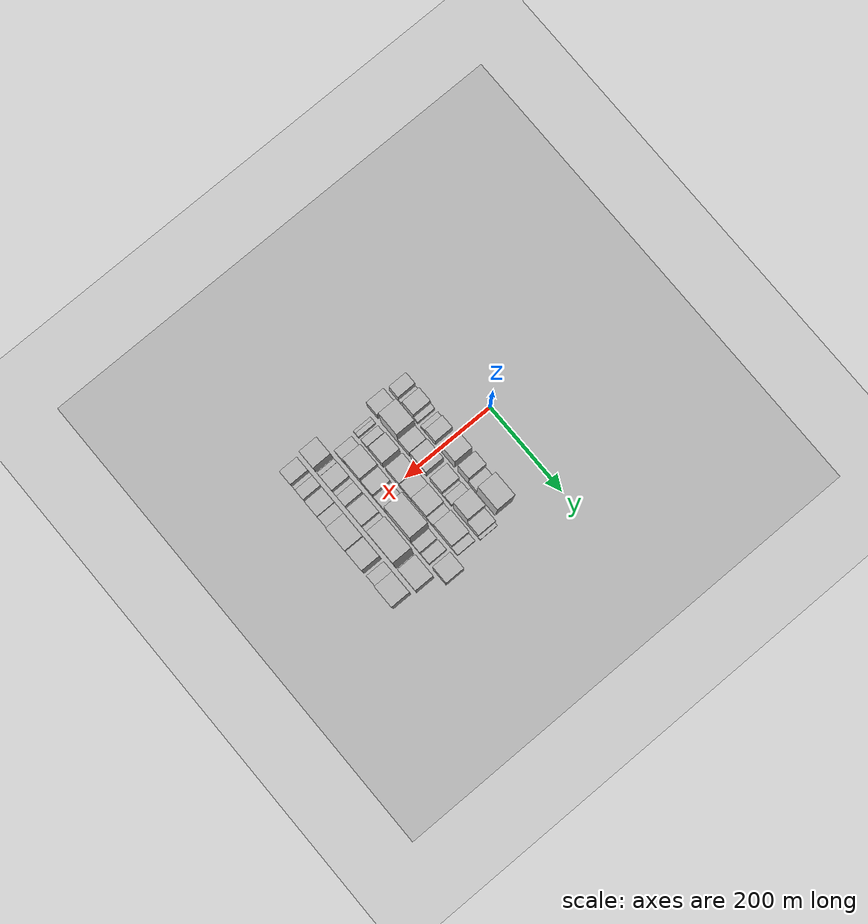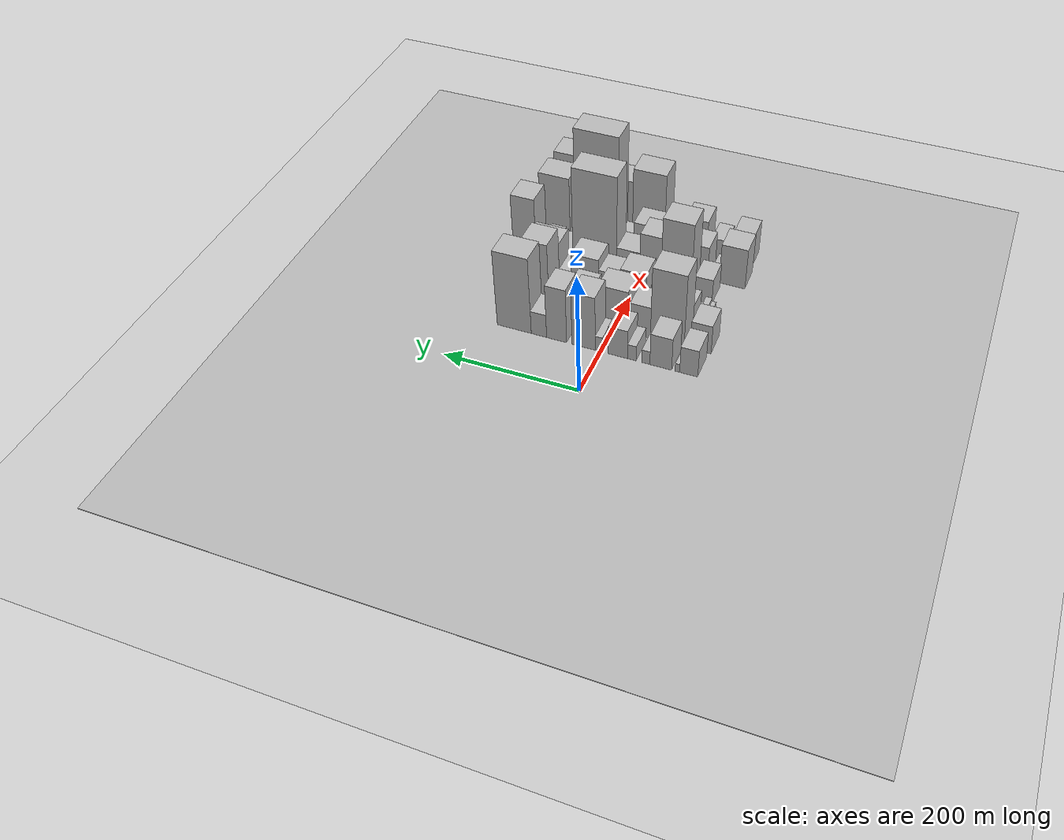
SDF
<sdf version="1.6">
 <world name="default">
  <include><name>ground_plane_1</name><uri>model://HANNAS_ground_plane</uri></include>
  <include>
   <name>ground_plane_2</name>
   <uri>model://HANNAS_ground_plane</uri>
   <pose>100 0 0  0 0 0</pose>
  </include>
  <model name="building_19">
   <static>1</static>
   <pose>100.0000 -127.1408 0 0.000000 0.000000 0.000000</pose>
   <link name="link">
    <pose>0 0 24.00 0 0 0</pose>
    <collision name="collision"><geometry><box><size>40.0000 25.6695 48.0000</size></box></geometry></collision>
    <visual name="visual">
     <cast_shadows>0</cast_shadows>
     <geometry><box><size>40.0000 25.6695 48.0000</size></box></geometry>
     <material>
      <script>
       <uri>model://HANNAS_wall/materials/scripts</uri>
       <uri>model://HANNAS_wall/materials/textures</uri>
       <name>vrc/HANNAS_wall</name>
      </script>
     </material>
    </visual>
   </link>
  </model>
  <model name="building_20">
   <static>1</static>
   <pose>100.0000 -111.0796 0 0.000000 0.000000 0.000000</pose>
   <link name="link">
    <pose>0 0 7.50 0 0 0</pose>
    <collision name="collision"><geometry><box><size>40.0000 6.4531 15.0000</size></box></geometry></collision>
    <visual name="visual">
     <cast_shadows>0</cast_shadows>
     <geometry><box><size>40.0000 6.4531 15.0000</size></box></geometry>
     <material>
      <script>
       <uri>model://HANNAS_wall/materials/scripts</uri>
       <uri>model://HANNAS_wall/materials/textures</uri>
       <name>vrc/HANNAS_wall</name>
      </script>
     </material>
    </visual>
   </link>
  </model>
  <model name="building_21">
   <static>1</static>
   <pose>100.0000 -87.2297 0 0.000000 0.000000 0.000000</pose>
   <link name="link">
    <pose>0 0 28.50 0 0 0</pose>
    <collision name="collision"><geometry><box><size>40.0000 31.2466 57.0000</size></box></geometry></collision>
    <visual name="visual">
     <cast_shadows>0</cast_shadows>
     <geometry><box><size>40.0000 31.2466 57.0000</size></box></geometry>
     <material>
      <script>
       <uri>model://HANNAS_wall/materials/scripts</uri>
       <uri>model://HANNAS_wall/materials/textures</uri>
       <name>vrc/HANNAS_wall</name>
      </script>
     </material>
    </visual>
   </link>
  </model>
  <model name="building_22">
   <static>1</static>
   <pose>100.0000 -65.7462 0 0.000000 0.000000 0.000000</pose>
   <link name="link">
    <pose>0 0 12.00 0 0 0</pose>
    <collision name="collision"><geometry><box><size>40.0000 11.7204 24.0000</size></box></geometry></collision>
    <visual name="visual">
     <cast_shadows>0</cast_shadows>
     <geometry><box><size>40.0000 11.7204 24.0000</size></box></geometry>
     <material>
      <script>
       <uri>model://HANNAS_wall/materials/scripts</uri>
       <uri>model://HANNAS_wall/materials/textures</uri>
       <name>vrc/HANNAS_wall</name>
      </script>
     </material>
    </visual>
   </link>
  </model>
  <model name="building_23">
   <static>1</static>
   <pose>100.0000 -45.4646 0 0.000000 0.000000 0.000000</pose>
   <link name="link">
    <pose>0 0 13.50 0 0 0</pose>
    <collision name="collision"><geometry><box><size>40.0000 12.8429 27.0000</size></box></geometry></collision>
    <visual name="visual">
     <cast_shadows>0</cast_shadows>
     <geometry><box><size>40.0000 12.8429 27.0000</size></box></geometry>
     <material>
      <script>
       <uri>model://HANNAS_wall/materials/scripts</uri>
       <uri>model://HANNAS_wall/materials/textures</uri>
       <name>vrc/HANNAS_wall</name>
      </script>
     </material>
    </visual>
   </link>
  </model>
  <model name="building_24">
   <static>1</static>
   <pose>100.0000 -24.9906 0 0.000000 0.000000 0.000000</pose>
   <link name="link">
    <pose>0 0 25.50 0 0 0</pose>
    <collision name="collision"><geometry><box><size>40.0000 28.1051 51.0000</size></box></geometry></collision>
    <visual name="visual">
     <cast_shadows>0</cast_shadows>
     <geometry><box><size>40.0000 28.1051 51.0000</size></box></geometry>
     <material>
      <script>
       <uri>model://HANNAS_wall/materials/scripts</uri>
       <uri>model://HANNAS_wall/materials/textures</uri>
       <name>vrc/HANNAS_wall</name>
      </script>
     </material>
    </visual>
   </link>
  </model>
  <model name="building_25">
   <static>1</static>
   <pose>100.0000 2.5151 0 0.000000 0.000000 0.000000</pose>
   <link name="link">
    <pose>0 0 13.50 0 0 0</pose>
    <collision name="collision"><geometry><box><size>40.0000 10.9063 27.0000</size></box></geometry></collision>
    <visual name="visual">
     <cast_shadows>0</cast_shadows>
     <geometry><box><size>40.0000 10.9063 27.0000</size></box></geometry>
     <material>
      <script>
       <uri>model://HANNAS_wall/materials/scripts</uri>
       <uri>model://HANNAS_wall/materials/textures</uri>
       <name>vrc/HANNAS_wall</name>
      </script>
     </material>
    </visual>
   </link>
  </model>
  <model name="building_26">
   <static>1</static>
   <pose>100.0000 25.2675 0 0.000000 0.000000 0.000000</pose>
   <link name="link">
    <pose>0 0 48.00 0 0 0</pose>
    <collision name="collision"><geometry><box><size>40.0000 34.5985 96.0000</size></box></geometry></collision>
    <visual name="visual">
     <cast_shadows>0</cast_shadows>
     <geometry><box><size>40.0000 34.5985 96.0000</size></box></geometry>
     <material>
      <script>
       <uri>model://HANNAS_wall/materials/scripts</uri>
       <uri>model://HANNAS_wall/materials/textures</uri>
       <name>vrc/HANNAS_wall</name>
      </script>
     </material>
    </visual>
   </link>
  </model>
  <model name="building_27">
   <static>1</static>
   <pose>100.0000 65.6006 0 0.000000 0.000000 0.000000</pose>
   <link name="link">
    <pose>0 0 48.00 0 0 0</pose>
    <collision name="collision"><geometry><box><size>40.0000 30.0678 96.0000</size></box></geometry></collision>
    <visual name="visual">
     <cast_shadows>0</cast_shadows>
     <geometry><box><size>40.0000 30.0678 96.0000</size></box></geometry>
     <material>
      <script>
       <uri>model://HANNAS_wall/materials/scripts</uri>
       <uri>model://HANNAS_wall/materials/textures</uri>
       <name>vrc/HANNAS_wall</name>
      </script>
     </material>
    </visual>
   </link>
  </model>
  <model name="building_28">
   <static>1</static>
   <pose>100.0000 92.2088 0 0.000000 0.000000 0.000000</pose>
   <link name="link">
    <pose>0 0 21.00 0 0 0</pose>
    <collision name="collision"><geometry><box><size>40.0000 23.1486 42.0000</size></box></geometry></collision>
    <visual name="visual">
     <cast_shadows>0</cast_shadows>
     <geometry><box><size>40.0000 23.1486 42.0000</size></box></geometry>
     <material>
      <script>
       <uri>model://HANNAS_wall/materials/scripts</uri>
       <uri>model://HANNAS_wall/materials/textures</uri>
       <name>vrc/HANNAS_wall</name>
      </script>
     </material>
    </visual>
   </link>
  </model>
  <model name="building_29">
   <static>1</static>
   <pose>100.0000 129.7440 0 0.000000 0.000000 0.000000</pose>
   <link name="link">
    <pose>0 0 67.50 0 0 0</pose>
    <collision name="collision"><geometry><box><size>40.0000 51.9217 135.0000</size></box></geometry></collision>
    <visual name="visual">
     <cast_shadows>0</cast_shadows>
     <geometry><box><size>40.0000 51.9217 135.0000</size></box></geometry>
     <material>
      <script>
       <uri>model://HANNAS_wall/materials/scripts</uri>
       <uri>model://HANNAS_wall/materials/textures</uri>
       <name>vrc/HANNAS_wall</name>
      </script>
     </material>
    </visual>
   </link>
  </model>
  <model name="building_77">
   <static>1</static>
   <pose>149.0000 -128.6249 0 0.000000 0.000000 0.000000</pose>
   <link name="link">
    <pose>0 0 25.50 0 0 0</pose>
    <collision name="collision"><geometry><box><size>40.0000 29.9173 51.0000</size></box></geometry></collision>
    <visual name="visual">
     <cast_shadows>0</cast_shadows>
     <geometry><box><size>40.0000 29.9173 51.0000</size></box></geometry>
     <material>
      <script>
       <uri>model://HANNAS_wall/materials/scripts</uri>
       <uri>model://HANNAS_wall/materials/textures</uri>
       <name>vrc/HANNAS_wall</name>
      </script>
     </material>
    </visual>
   </link>
  </model>
  <model name="building_78">
   <static>1</static>
   <pose>149.0000 -80.0184 0 0.000000 0.000000 0.000000</pose>
   <link name="link">
    <pose>0 0 64.50 0 0 0</pose>
    <collision name="collision"><geometry><box><size>40.0000 49.2957 129.0000</size></box></geometry></collision>
    <visual name="visual">
     <cast_shadows>0</cast_shadows>
     <geometry><box><size>40.0000 49.2957 129.0000</size></box></geometry>
     <material>
      <script>
       <uri>model://HANNAS_wall/materials/scripts</uri>
       <uri>model://HANNAS_wall/materials/textures</uri>
       <name>vrc/HANNAS_wall</name>
      </script>
     </material>
    </visual>
   </link>
  </model>
  <model name="building_79">
   <static>1</static>
   <pose>149.0000 -40.0580 0 0.000000 0.000000 0.000000</pose>
   <link name="link">
    <pose>0 0 28.50 0 0 0</pose>
    <collision name="collision"><geometry><box><size>40.0000 30.6251 57.0000</size></box></geometry></collision>
    <visual name="visual">
     <cast_shadows>0</cast_shadows>
     <geometry><box><size>40.0000 30.6251 57.0000</size></box></geometry>
     <material>
      <script>
       <uri>model://HANNAS_wall/materials/scripts</uri>
       <uri>model://HANNAS_wall/materials/textures</uri>
       <name>vrc/HANNAS_wall</name>
      </script>
     </material>
    </visual>
   </link>
  </model>
  <model name="building_80">
   <static>1</static>
   <pose>149.0000 0.3487 0 0.000000 0.000000 0.000000</pose>
   <link name="link">
    <pose>0 0 37.50 0 0 0</pose>
    <collision name="collision"><geometry><box><size>40.0000 44.1882 75.0000</size></box></geometry></collision>
    <visual name="visual">
     <cast_shadows>0</cast_shadows>
     <geometry><box><size>40.0000 44.1882 75.0000</size></box></geometry>
     <material>
      <script>
       <uri>model://HANNAS_wall/materials/scripts</uri>
       <uri>model://HANNAS_wall/materials/textures</uri>
       <name>vrc/HANNAS_wall</name>
      </script>
     </material>
    </visual>
   </link>
  </model>
  <model name="building_81">
   <static>1</static>
   <pose>149.0000 49.5067 0 0.000000 0.000000 0.000000</pose>
   <link name="link">
    <pose>0 0 30.00 0 0 0</pose>
    <collision name="collision"><geometry><box><size>40.0000 34.1278 60.0000</size></box></geometry></collision>
    <visual name="visual">
     <cast_shadows>0</cast_shadows>
     <geometry><box><size>40.0000 34.1278 60.0000</size></box></geometry>
     <material>
      <script>
       <uri>model://HANNAS_wall/materials/scripts</uri>
       <uri>model://HANNAS_wall/materials/textures</uri>
       <name>vrc/HANNAS_wall</name>
      </script>
     </material>
    </visual>
   </link>
  </model>
  <model name="building_82">
   <static>1</static>
   <pose>149.0000 69.8891 0 0.000000 0.000000 0.000000</pose>
   <link name="link">
    <pose>0 0 7.50 0 0 0</pose>
    <collision name="collision"><geometry><box><size>40.0000 6.6370 15.0000</size></box></geometry></collision>
    <visual name="visual">
     <cast_shadows>0</cast_shadows>
     <geometry><box><size>40.0000 6.6370 15.0000</size></box></geometry>
     <material>
      <script>
       <uri>model://HANNAS_wall/materials/scripts</uri>
       <uri>model://HANNAS_wall/materials/textures</uri>
       <name>vrc/HANNAS_wall</name>
      </script>
     </material>
    </visual>
   </link>
  </model>
  <model name="building_83">
   <static>1</static>
   <pose>149.0000 82.9755 0 0.000000 0.000000 0.000000</pose>
   <link name="link">
    <pose>0 0 16.50 0 0 0</pose>
    <collision name="collision"><geometry><box><size>40.0000 19.5358 33.0000</size></box></geometry></collision>
    <visual name="visual">
     <cast_shadows>0</cast_shadows>
     <geometry><box><size>40.0000 19.5358 33.0000</size></box></geometry>
     <material>
      <script>
       <uri>model://HANNAS_wall/materials/scripts</uri>
       <uri>model://HANNAS_wall/materials/textures</uri>
       <name>vrc/HANNAS_wall</name>
      </script>
     </material>
    </visual>
   </link>
  </model>
  <model name="building_84">
   <static>1</static>
   <pose>149.0000 116.1158 0 0.000000 0.000000 0.000000</pose>
   <link name="link">
    <pose>0 0 61.50 0 0 0</pose>
    <collision name="collision"><geometry><box><size>40.0000 38.7449 123.0000</size></box></geometry></collision>
    <visual name="visual">
     <cast_shadows>0</cast_shadows>
     <geometry><box><size>40.0000 38.7449 123.0000</size></box></geometry>
     <material>
      <script>
       <uri>model://HANNAS_wall/materials/scripts</uri>
       <uri>model://HANNAS_wall/materials/textures</uri>
       <name>vrc/HANNAS_wall</name>
      </script>
     </material>
    </visual>
   </link>
  </model>
  <model name="building_85">
   <static>1</static>
   <pose>149.0000 150.5830 0 0.000000 0.000000 0.000000</pose>
   <link name="link">
    <pose>0 0 30.00 0 0 0</pose>
    <collision name="collision"><geometry><box><size>40.0000 30.1894 60.0000</size></box></geometry></collision>
    <visual name="visual">
     <cast_shadows>0</cast_shadows>
     <geometry><box><size>40.0000 30.1894 60.0000</size></box></geometry>
     <material>
      <script>
       <uri>model://HANNAS_wall/materials/scripts</uri>
       <uri>model://HANNAS_wall/materials/textures</uri>
       <name>vrc/HANNAS_wall</name>
      </script>
     </material>
    </visual>
   </link>
  </model>
  <model name="building_86">
   <static>1</static>
   <pose>149.0000 169.0528 0 0.000000 0.000000 0.000000</pose>
   <link name="link">
    <pose>0 0 7.50 0 0 0</pose>
    <collision name="collision"><geometry><box><size>40.0000 6.7502 15.0000</size></box></geometry></collision>
    <visual name="visual">
     <cast_shadows>0</cast_shadows>
     <geometry><box><size>40.0000 6.7502 15.0000</size></box></geometry>
     <material>
      <script>
       <uri>model://HANNAS_wall/materials/scripts</uri>
       <uri>model://HANNAS_wall/materials/textures</uri>
       <name>vrc/HANNAS_wall</name>
      </script>
     </material>
    </visual>
   </link>
  </model>
  <model name="building_128">
   <static>1</static>
   <pose>198.0000 -120.3595 0 0.000000 0.000000 0.000000</pose>
   <link name="link">
    <pose>0 0 7.50 0 0 0</pose>
    <collision name="collision"><geometry><box><size>40.0000 6.4056 15.0000</size></box></geometry></collision>
    <visual name="visual">
     <cast_shadows>0</cast_shadows>
     <geometry><box><size>40.0000 6.4056 15.0000</size></box></geometry>
     <material>
      <script>
       <uri>model://HANNAS_wall/materials/scripts</uri>
       <uri>model://HANNAS_wall/materials/textures</uri>
       <name>vrc/HANNAS_wall</name>
      </script>
     </material>
    </visual>
   </link>
  </model>
  <model name="building_129">
   <static>1</static>
   <pose>198.0000 -112.6221 0 0.000000 0.000000 0.000000</pose>
   <link name="link">
    <pose>0 0 10.50 0 0 0</pose>
    <collision name="collision"><geometry><box><size>40.0000 9.0693 21.0000</size></box></geometry></collision>
    <visual name="visual">
     <cast_shadows>0</cast_shadows>
     <geometry><box><size>40.0000 9.0693 21.0000</size></box></geometry>
     <material>
      <script>
       <uri>model://HANNAS_wall/materials/scripts</uri>
       <uri>model://HANNAS_wall/materials/textures</uri>
       <name>vrc/HANNAS_wall</name>
      </script>
     </material>
    </visual>
   </link>
  </model>
  <model name="building_130">
   <static>1</static>
   <pose>198.0000 -92.4894 0 0.000000 0.000000 0.000000</pose>
   <link name="link">
    <pose>0 0 15.00 0 0 0</pose>
    <collision name="collision"><geometry><box><size>40.0000 17.1961 30.0000</size></box></geometry></collision>
    <visual name="visual">
     <cast_shadows>0</cast_shadows>
     <geometry><box><size>40.0000 17.1961 30.0000</size></box></geometry>
     <material>
      <script>
       <uri>model://HANNAS_wall/materials/scripts</uri>
       <uri>model://HANNAS_wall/materials/textures</uri>
       <name>vrc/HANNAS_wall</name>
      </script>
     </material>
    </visual>
   </link>
  </model>
  <model name="building_131">
   <static>1</static>
   <pose>198.0000 -80.7135 0 0.000000 0.000000 0.000000</pose>
   <link name="link">
    <pose>0 0 7.50 0 0 0</pose>
    <collision name="collision"><geometry><box><size>40.0000 6.3558 15.0000</size></box></geometry></collision>
    <visual name="visual">
     <cast_shadows>0</cast_shadows>
     <geometry><box><size>40.0000 6.3558 15.0000</size></box></geometry>
     <material>
      <script>
       <uri>model://HANNAS_wall/materials/scripts</uri>
       <uri>model://HANNAS_wall/materials/textures</uri>
       <name>vrc/HANNAS_wall</name>
      </script>
     </material>
    </visual>
   </link>
  </model>
  <model name="building_132">
   <static>1</static>
   <pose>198.0000 -58.3212 0 0.000000 0.000000 0.000000</pose>
   <link name="link">
    <pose>0 0 37.50 0 0 0</pose>
    <collision name="collision"><geometry><box><size>40.0000 38.4289 75.0000</size></box></geometry></collision>
    <visual name="visual">
     <cast_shadows>0</cast_shadows>
     <geometry><box><size>40.0000 38.4289 75.0000</size></box></geometry>
     <material>
      <script>
       <uri>model://HANNAS_wall/materials/scripts</uri>
       <uri>model://HANNAS_wall/materials/textures</uri>
       <name>vrc/HANNAS_wall</name>
      </script>
     </material>
    </visual>
   </link>
  </model>
  <model name="building_133">
   <static>1</static>
   <pose>198.0000 -11.8945 0 0.000000 0.000000 0.000000</pose>
   <link name="link">
    <pose>0 0 34.50 0 0 0</pose>
    <collision name="collision"><geometry><box><size>40.0000 38.4244 69.0000</size></box></geometry></collision>
    <visual name="visual">
     <cast_shadows>0</cast_shadows>
     <geometry><box><size>40.0000 38.4244 69.0000</size></box></geometry>
     <material>
      <script>
       <uri>model://HANNAS_wall/materials/scripts</uri>
       <uri>model://HANNAS_wall/materials/textures</uri>
       <name>vrc/HANNAS_wall</name>
      </script>
     </material>
    </visual>
   </link>
  </model>
  <model name="building_134">
   <static>1</static>
   <pose>198.0000 23.7415 0 0.000000 0.000000 0.000000</pose>
   <link name="link">
    <pose>0 0 28.50 0 0 0</pose>
    <collision name="collision"><geometry><box><size>40.0000 32.8474 57.0000</size></box></geometry></collision>
    <visual name="visual">
     <cast_shadows>0</cast_shadows>
     <geometry><box><size>40.0000 32.8474 57.0000</size></box></geometry>
     <material>
      <script>
       <uri>model://HANNAS_wall/materials/scripts</uri>
       <uri>model://HANNAS_wall/materials/textures</uri>
       <name>vrc/HANNAS_wall</name>
      </script>
     </material>
    </visual>
   </link>
  </model>
  <model name="building_135">
   <static>1</static>
   <pose>198.0000 61.0651 0 0.000000 0.000000 0.000000</pose>
   <link name="link">
    <pose>0 0 37.50 0 0 0</pose>
    <collision name="collision"><geometry><box><size>40.0000 41.7999 75.0000</size></box></geometry></collision>
    <visual name="visual">
     <cast_shadows>0</cast_shadows>
     <geometry><box><size>40.0000 41.7999 75.0000</size></box></geometry>
     <material>
      <script>
       <uri>model://HANNAS_wall/materials/scripts</uri>
       <uri>model://HANNAS_wall/materials/textures</uri>
       <name>vrc/HANNAS_wall</name>
      </script>
     </material>
    </visual>
   </link>
  </model>
  <model name="building_136">
   <static>1</static>
   <pose>198.0000 91.7502 0 0.000000 0.000000 0.000000</pose>
   <link name="link">
    <pose>0 0 19.50 0 0 0</pose>
    <collision name="collision"><geometry><box><size>40.0000 19.5705 39.0000</size></box></geometry></collision>
    <visual name="visual">
     <cast_shadows>0</cast_shadows>
     <geometry><box><size>40.0000 19.5705 39.0000</size></box></geometry>
     <material>
      <script>
       <uri>model://HANNAS_wall/materials/scripts</uri>
       <uri>model://HANNAS_wall/materials/textures</uri>
       <name>vrc/HANNAS_wall</name>
      </script>
     </material>
    </visual>
   </link>
  </model>
  <model name="building_137">
   <static>1</static>
   <pose>198.0000 126.2471 0 0.000000 0.000000 0.000000</pose>
   <link name="link">
    <pose>0 0 42.00 0 0 0</pose>
    <collision name="collision"><geometry><box><size>40.0000 49.4233 84.0000</size></box></geometry></collision>
    <visual name="visual">
     <cast_shadows>0</cast_shadows>
     <geometry><box><size>40.0000 49.4233 84.0000</size></box></geometry>
     <material>
      <script>
       <uri>model://HANNAS_wall/materials/scripts</uri>
       <uri>model://HANNAS_wall/materials/textures</uri>
       <name>vrc/HANNAS_wall</name>
      </script>
     </material>
    </visual>
   </link>
  </model>
  <model name="building_138">
   <static>1</static>
   <pose>198.0000 159.4452 0 0.000000 0.000000 0.000000</pose>
   <link name="link">
    <pose>0 0 16.50 0 0 0</pose>
    <collision name="collision"><geometry><box><size>40.0000 16.9728 33.0000</size></box></geometry></collision>
    <visual name="visual">
     <cast_shadows>0</cast_shadows>
     <geometry><box><size>40.0000 16.9728 33.0000</size></box></geometry>
     <material>
      <script>
       <uri>model://HANNAS_wall/materials/scripts</uri>
       <uri>model://HANNAS_wall/materials/textures</uri>
       <name>vrc/HANNAS_wall</name>
      </script>
     </material>
    </visual>
   </link>
  </model>
  <model name="building_179">
   <static>1</static>
   <pose>247.0000 -101.2885 0 0.000000 0.000000 0.000000</pose>
   <link name="link">
    <pose>0 0 22.50 0 0 0</pose>
    <collision name="collision"><geometry><box><size>40.0000 26.7692 45.0000</size></box></geometry></collision>
    <visual name="visual">
     <cast_shadows>0</cast_shadows>
     <geometry><box><size>40.0000 26.7692 45.0000</size></box></geometry>
     <material>
      <script>
       <uri>model://HANNAS_wall/materials/scripts</uri>
       <uri>model://HANNAS_wall/materials/textures</uri>
       <name>vrc/HANNAS_wall</name>
      </script>
     </material>
    </visual>
   </link>
  </model>
  <model name="building_180">
   <static>1</static>
   <pose>247.0000 -59.9043 0 0.000000 0.000000 0.000000</pose>
   <link name="link">
    <pose>0 0 67.50 0 0 0</pose>
    <collision name="collision"><geometry><box><size>40.0000 45.9992 135.0000</size></box></geometry></collision>
    <visual name="visual">
     <cast_shadows>0</cast_shadows>
     <geometry><box><size>40.0000 45.9992 135.0000</size></box></geometry>
     <material>
      <script>
       <uri>model://HANNAS_wall/materials/scripts</uri>
       <uri>model://HANNAS_wall/materials/textures</uri>
       <name>vrc/HANNAS_wall</name>
      </script>
     </material>
    </visual>
   </link>
  </model>
  <model name="building_181">
   <static>1</static>
   <pose>247.0000 -20.7625 0 0.000000 0.000000 0.000000</pose>
   <link name="link">
    <pose>0 0 49.50 0 0 0</pose>
    <collision name="collision"><geometry><box><size>40.0000 32.2844 99.0000</size></box></geometry></collision>
    <visual name="visual">
     <cast_shadows>0</cast_shadows>
     <geometry><box><size>40.0000 32.2844 99.0000</size></box></geometry>
     <material>
      <script>
       <uri>model://HANNAS_wall/materials/scripts</uri>
       <uri>model://HANNAS_wall/materials/textures</uri>
       <name>vrc/HANNAS_wall</name>
      </script>
     </material>
    </visual>
   </link>
  </model>
  <model name="building_182">
   <static>1</static>
   <pose>247.0000 13.1707 0 0.000000 0.000000 0.000000</pose>
   <link name="link">
    <pose>0 0 31.50 0 0 0</pose>
    <collision name="collision"><geometry><box><size>40.0000 35.5819 63.0000</size></box></geometry></collision>
    <visual name="visual">
     <cast_shadows>0</cast_shadows>
     <geometry><box><size>40.0000 35.5819 63.0000</size></box></geometry>
     <material>
      <script>
       <uri>model://HANNAS_wall/materials/scripts</uri>
       <uri>model://HANNAS_wall/materials/textures</uri>
       <name>vrc/HANNAS_wall</name>
      </script>
     </material>
    </visual>
   </link>
  </model>
  <model name="building_183">
   <static>1</static>
   <pose>247.0000 65.0733 0 0.000000 0.000000 0.000000</pose>
   <link name="link">
    <pose>0 0 93.00 0 0 0</pose>
    <collision name="collision"><geometry><box><size>40.0000 68.2232 186.0000</size></box></geometry></collision>
    <visual name="visual">
     <cast_shadows>0</cast_shadows>
     <geometry><box><size>40.0000 68.2232 186.0000</size></box></geometry>
     <material>
      <script>
       <uri>model://HANNAS_wall/materials/scripts</uri>
       <uri>model://HANNAS_wall/materials/textures</uri>
       <name>vrc/HANNAS_wall</name>
      </script>
     </material>
    </visual>
   </link>
  </model>
  <model name="building_184">
   <static>1</static>
   <pose>247.0000 110.4803 0 0.000000 0.000000 0.000000</pose>
   <link name="link">
    <pose>0 0 19.50 0 0 0</pose>
    <collision name="collision"><geometry><box><size>40.0000 22.5909 39.0000</size></box></geometry></collision>
    <visual name="visual">
     <cast_shadows>0</cast_shadows>
     <geometry><box><size>40.0000 22.5909 39.0000</size></box></geometry>
     <material>
      <script>
       <uri>model://HANNAS_wall/materials/scripts</uri>
       <uri>model://HANNAS_wall/materials/textures</uri>
       <name>vrc/HANNAS_wall</name>
      </script>
     </material>
    </visual>
   </link>
  </model>
  <model name="building_185">
   <static>1</static>
   <pose>247.0000 136.3132 0 0.000000 0.000000 0.000000</pose>
   <link name="link">
    <pose>0 0 22.50 0 0 0</pose>
    <collision name="collision"><geometry><box><size>40.0000 23.0749 45.0000</size></box></geometry></collision>
    <visual name="visual">
     <cast_shadows>0</cast_shadows>
     <geometry><box><size>40.0000 23.0749 45.0000</size></box></geometry>
     <material>
      <script>
       <uri>model://HANNAS_wall/materials/scripts</uri>
       <uri>model://HANNAS_wall/materials/textures</uri>
       <name>vrc/HANNAS_wall</name>
      </script>
     </material>
    </visual>
   </link>
  </model>
  <model name="building_186">
   <static>1</static>
   <pose>247.0000 176.2372 0 0.000000 0.000000 0.000000</pose>
   <link name="link">
    <pose>0 0 57.00 0 0 0</pose>
    <collision name="collision"><geometry><box><size>40.0000 36.7731 114.0000</size></box></geometry></collision>
    <visual name="visual">
     <cast_shadows>0</cast_shadows>
     <geometry><box><size>40.0000 36.7731 114.0000</size></box></geometry>
     <material>
      <script>
       <uri>model://HANNAS_wall/materials/scripts</uri>
       <uri>model://HANNAS_wall/materials/textures</uri>
       <name>vrc/HANNAS_wall</name>
      </script>
     </material>
    </visual>
   </link>
  </model>
  <model name="building_222">
   <static>1</static>
   <pose>296.0000 -130.2844 0 0.000000 0.000000 0.000000</pose>
   <link name="link">
    <pose>0 0 36.00 0 0 0</pose>
    <collision name="collision"><geometry><box><size>40.0000 39.0794 72.0000</size></box></geometry></collision>
    <visual name="visual">
     <cast_shadows>0</cast_shadows>
     <geometry><box><size>40.0000 39.0794 72.0000</size></box></geometry>
     <material>
      <script>
       <uri>model://HANNAS_wall/materials/scripts</uri>
       <uri>model://HANNAS_wall/materials/textures</uri>
       <name>vrc/HANNAS_wall</name>
      </script>
     </material>
    </visual>
   </link>
  </model>
  <model name="building_223">
   <static>1</static>
   <pose>296.0000 -102.3655 0 0.000000 0.000000 0.000000</pose>
   <link name="link">
    <pose>0 0 10.50 0 0 0</pose>
    <collision name="collision"><geometry><box><size>40.0000 8.7583 21.0000</size></box></geometry></collision>
    <visual name="visual">
     <cast_shadows>0</cast_shadows>
     <geometry><box><size>40.0000 8.7583 21.0000</size></box></geometry>
     <material>
      <script>
       <uri>model://HANNAS_wall/materials/scripts</uri>
       <uri>model://HANNAS_wall/materials/textures</uri>
       <name>vrc/HANNAS_wall</name>
      </script>
     </material>
    </visual>
   </link>
  </model>
  <model name="building_224">
   <static>1</static>
   <pose>296.0000 -76.8739 0 0.000000 0.000000 0.000000</pose>
   <link name="link">
    <pose>0 0 30.00 0 0 0</pose>
    <collision name="collision"><geometry><box><size>40.0000 32.2249 60.0000</size></box></geometry></collision>
    <visual name="visual">
     <cast_shadows>0</cast_shadows>
     <geometry><box><size>40.0000 32.2249 60.0000</size></box></geometry>
     <material>
      <script>
       <uri>model://HANNAS_wall/materials/scripts</uri>
       <uri>model://HANNAS_wall/materials/textures</uri>
       <name>vrc/HANNAS_wall</name>
      </script>
     </material>
    </visual>
   </link>
  </model>
  <model name="building_225">
   <static>1</static>
   <pose>296.0000 -55.2425 0 0.000000 0.000000 0.000000</pose>
   <link name="link">
    <pose>0 0 12.00 0 0 0</pose>
    <collision name="collision"><geometry><box><size>40.0000 11.0379 24.0000</size></box></geometry></collision>
    <visual name="visual">
     <cast_shadows>0</cast_shadows>
     <geometry><box><size>40.0000 11.0379 24.0000</size></box></geometry>
     <material>
      <script>
       <uri>model://HANNAS_wall/materials/scripts</uri>
       <uri>model://HANNAS_wall/materials/textures</uri>
       <name>vrc/HANNAS_wall</name>
      </script>
     </material>
    </visual>
   </link>
  </model>
  <model name="building_226">
   <static>1</static>
   <pose>296.0000 -37.8678 0 0.000000 0.000000 0.000000</pose>
   <link name="link">
    <pose>0 0 21.00 0 0 0</pose>
    <collision name="collision"><geometry><box><size>40.0000 23.7115 42.0000</size></box></geometry></collision>
    <visual name="visual">
     <cast_shadows>0</cast_shadows>
     <geometry><box><size>40.0000 23.7115 42.0000</size></box></geometry>
     <material>
      <script>
       <uri>model://HANNAS_wall/materials/scripts</uri>
       <uri>model://HANNAS_wall/materials/textures</uri>
       <name>vrc/HANNAS_wall</name>
      </script>
     </material>
    </visual>
   </link>
  </model>
  <model name="building_227">
   <static>1</static>
   <pose>296.0000 -22.3889 0 0.000000 0.000000 0.000000</pose>
   <link name="link">
    <pose>0 0 7.50 0 0 0</pose>
    <collision name="collision"><geometry><box><size>40.0000 7.2464 15.0000</size></box></geometry></collision>
    <visual name="visual">
     <cast_shadows>0</cast_shadows>
     <geometry><box><size>40.0000 7.2464 15.0000</size></box></geometry>
     <material>
      <script>
       <uri>model://HANNAS_wall/materials/scripts</uri>
       <uri>model://HANNAS_wall/materials/textures</uri>
       <name>vrc/HANNAS_wall</name>
      </script>
     </material>
    </visual>
   </link>
  </model>
  <model name="building_228">
   <static>1</static>
   <pose>296.0000 1.7748 0 0.000000 0.000000 0.000000</pose>
   <link name="link">
    <pose>0 0 37.50 0 0 0</pose>
    <collision name="collision"><geometry><box><size>40.0000 41.0809 75.0000</size></box></geometry></collision>
    <visual name="visual">
     <cast_shadows>0</cast_shadows>
     <geometry><box><size>40.0000 41.0809 75.0000</size></box></geometry>
     <material>
      <script>
       <uri>model://HANNAS_wall/materials/scripts</uri>
       <uri>model://HANNAS_wall/materials/textures</uri>
       <name>vrc/HANNAS_wall</name>
      </script>
     </material>
    </visual>
   </link>
  </model>
  <model name="building_229">
   <static>1</static>
   <pose>296.0000 34.2545 0 0.000000 0.000000 0.000000</pose>
   <link name="link">
    <pose>0 0 21.00 0 0 0</pose>
    <collision name="collision"><geometry><box><size>40.0000 23.8785 42.0000</size></box></geometry></collision>
    <visual name="visual">
     <cast_shadows>0</cast_shadows>
     <geometry><box><size>40.0000 23.8785 42.0000</size></box></geometry>
     <material>
      <script>
       <uri>model://HANNAS_wall/materials/scripts</uri>
       <uri>model://HANNAS_wall/materials/textures</uri>
       <name>vrc/HANNAS_wall</name>
      </script>
     </material>
    </visual>
   </link>
  </model>
  <model name="building_230">
   <static>1</static>
   <pose>296.0000 80.5717 0 0.000000 0.000000 0.000000</pose>
   <link name="link">
    <pose>0 0 108.00 0 0 0</pose>
    <collision name="collision"><geometry><box><size>40.0000 68.7559 216.0000</size></box></geometry></collision>
    <visual name="visual">
     <cast_shadows>0</cast_shadows>
     <geometry><box><size>40.0000 68.7559 216.0000</size></box></geometry>
     <material>
      <script>
       <uri>model://HANNAS_wall/materials/scripts</uri>
       <uri>model://HANNAS_wall/materials/textures</uri>
       <name>vrc/HANNAS_wall</name>
      </script>
     </material>
    </visual>
   </link>
  </model>
  <model name="building_231">
   <static>1</static>
   <pose>296.0000 146.9675 0 0.000000 0.000000 0.000000</pose>
   <link name="link">
    <pose>0 0 63.00 0 0 0</pose>
    <collision name="collision"><geometry><box><size>40.0000 48.0357 126.0000</size></box></geometry></collision>
    <visual name="visual">
     <cast_shadows>0</cast_shadows>
     <geometry><box><size>40.0000 48.0357 126.0000</size></box></geometry>
     <material>
      <script>
       <uri>model://HANNAS_wall/materials/scripts</uri>
       <uri>model://HANNAS_wall/materials/textures</uri>
       <name>vrc/HANNAS_wall</name>
      </script>
     </material>
    </visual>
   </link>
  </model>
  <model name="building_269">
   <static>1</static>
   <pose>345.0000 -130.8872 0 0.000000 0.000000 0.000000</pose>
   <link name="link">
    <pose>0 0 30.00 0 0 0</pose>
    <collision name="collision"><geometry><box><size>40.0000 30.6703 60.0000</size></box></geometry></collision>
    <visual name="visual">
     <cast_shadows>0</cast_shadows>
     <geometry><box><size>40.0000 30.6703 60.0000</size></box></geometry>
     <material>
      <script>
       <uri>model://HANNAS_wall/materials/scripts</uri>
       <uri>model://HANNAS_wall/materials/textures</uri>
       <name>vrc/HANNAS_wall</name>
      </script>
     </material>
    </visual>
   </link>
  </model>
  <model name="building_270">
   <static>1</static>
   <pose>345.0000 -110.7030 0 0.000000 0.000000 0.000000</pose>
   <link name="link">
    <pose>0 0 12.00 0 0 0</pose>
    <collision name="collision"><geometry><box><size>40.0000 9.6982 24.0000</size></box></geometry></collision>
    <visual name="visual">
     <cast_shadows>0</cast_shadows>
     <geometry><box><size>40.0000 9.6982 24.0000</size></box></geometry>
     <material>
      <script>
       <uri>model://HANNAS_wall/materials/scripts</uri>
       <uri>model://HANNAS_wall/materials/textures</uri>
       <name>vrc/HANNAS_wall</name>
      </script>
     </material>
    </visual>
   </link>
  </model>
  <model name="building_271">
   <static>1</static>
   <pose>345.0000 -94.4564 0 0.000000 0.000000 0.000000</pose>
   <link name="link">
    <pose>0 0 19.50 0 0 0</pose>
    <collision name="collision"><geometry><box><size>40.0000 22.7949 39.0000</size></box></geometry></collision>
    <visual name="visual">
     <cast_shadows>0</cast_shadows>
     <geometry><box><size>40.0000 22.7949 39.0000</size></box></geometry>
     <material>
      <script>
       <uri>model://HANNAS_wall/materials/scripts</uri>
       <uri>model://HANNAS_wall/materials/textures</uri>
       <name>vrc/HANNAS_wall</name>
      </script>
     </material>
    </visual>
   </link>
  </model>
  <model name="building_272">
   <static>1</static>
   <pose>345.0000 -58.6847 0 0.000000 0.000000 0.000000</pose>
   <link name="link">
    <pose>0 0 33.00 0 0 0</pose>
    <collision name="collision"><geometry><box><size>40.0000 34.7487 66.0000</size></box></geometry></collision>
    <visual name="visual">
     <cast_shadows>0</cast_shadows>
     <geometry><box><size>40.0000 34.7487 66.0000</size></box></geometry>
     <material>
      <script>
       <uri>model://HANNAS_wall/materials/scripts</uri>
       <uri>model://HANNAS_wall/materials/textures</uri>
       <name>vrc/HANNAS_wall</name>
      </script>
     </material>
    </visual>
   </link>
  </model>
  <model name="building_273">
   <static>1</static>
   <pose>345.0000 -25.5125 0 0.000000 0.000000 0.000000</pose>
   <link name="link">
    <pose>0 0 27.00 0 0 0</pose>
    <collision name="collision"><geometry><box><size>40.0000 31.5957 54.0000</size></box></geometry></collision>
    <visual name="visual">
     <cast_shadows>0</cast_shadows>
     <geometry><box><size>40.0000 31.5957 54.0000</size></box></geometry>
     <material>
      <script>
       <uri>model://HANNAS_wall/materials/scripts</uri>
       <uri>model://HANNAS_wall/materials/textures</uri>
       <name>vrc/HANNAS_wall</name>
      </script>
     </material>
    </visual>
   </link>
  </model>
  <model name="building_274">
   <static>1</static>
   <pose>345.0000 15.8147 0 0.000000 0.000000 0.000000</pose>
   <link name="link">
    <pose>0 0 66.00 0 0 0</pose>
    <collision name="collision"><geometry><box><size>40.0000 51.0586 132.0000</size></box></geometry></collision>
    <visual name="visual">
     <cast_shadows>0</cast_shadows>
     <geometry><box><size>40.0000 51.0586 132.0000</size></box></geometry>
     <material>
      <script>
       <uri>model://HANNAS_wall/materials/scripts</uri>
       <uri>model://HANNAS_wall/materials/textures</uri>
       <name>vrc/HANNAS_wall</name>
      </script>
     </material>
    </visual>
   </link>
  </model>
  <model name="building_275">
   <static>1</static>
   <pose>345.0000 62.9054 0 0.000000 0.000000 0.000000</pose>
   <link name="link">
    <pose>0 0 54.00 0 0 0</pose>
    <collision name="collision"><geometry><box><size>40.0000 43.1229 108.0000</size></box></geometry></collision>
    <visual name="visual">
     <cast_shadows>0</cast_shadows>
     <geometry><box><size>40.0000 43.1229 108.0000</size></box></geometry>
     <material>
      <script>
       <uri>model://HANNAS_wall/materials/scripts</uri>
       <uri>model://HANNAS_wall/materials/textures</uri>
       <name>vrc/HANNAS_wall</name>
      </script>
     </material>
    </visual>
   </link>
  </model>
  <model name="building_276">
   <static>1</static>
   <pose>345.0000 104.7606 0 0.000000 0.000000 0.000000</pose>
   <link name="link">
    <pose>0 0 21.00 0 0 0</pose>
    <collision name="collision"><geometry><box><size>40.0000 24.5874 42.0000</size></box></geometry></collision>
    <visual name="visual">
     <cast_shadows>0</cast_shadows>
     <geometry><box><size>40.0000 24.5874 42.0000</size></box></geometry>
     <material>
      <script>
       <uri>model://HANNAS_wall/materials/scripts</uri>
       <uri>model://HANNAS_wall/materials/textures</uri>
       <name>vrc/HANNAS_wall</name>
      </script>
     </material>
    </visual>
   </link>
  </model>
  <model name="building_277">
   <static>1</static>
   <pose>345.0000 143.2719 0 0.000000 0.000000 0.000000</pose>
   <link name="link">
    <pose>0 0 66.00 0 0 0</pose>
    <collision name="collision"><geometry><box><size>40.0000 46.4353 132.0000</size></box></geometry></collision>
    <visual name="visual">
     <cast_shadows>0</cast_shadows>
     <geometry><box><size>40.0000 46.4353 132.0000</size></box></geometry>
     <material>
      <script>
       <uri>model://HANNAS_wall/materials/scripts</uri>
       <uri>model://HANNAS_wall/materials/textures</uri>
       <name>vrc/HANNAS_wall</name>
      </script>
     </material>
    </visual>
   </link>
  </model>
 </world>
</sdf>
